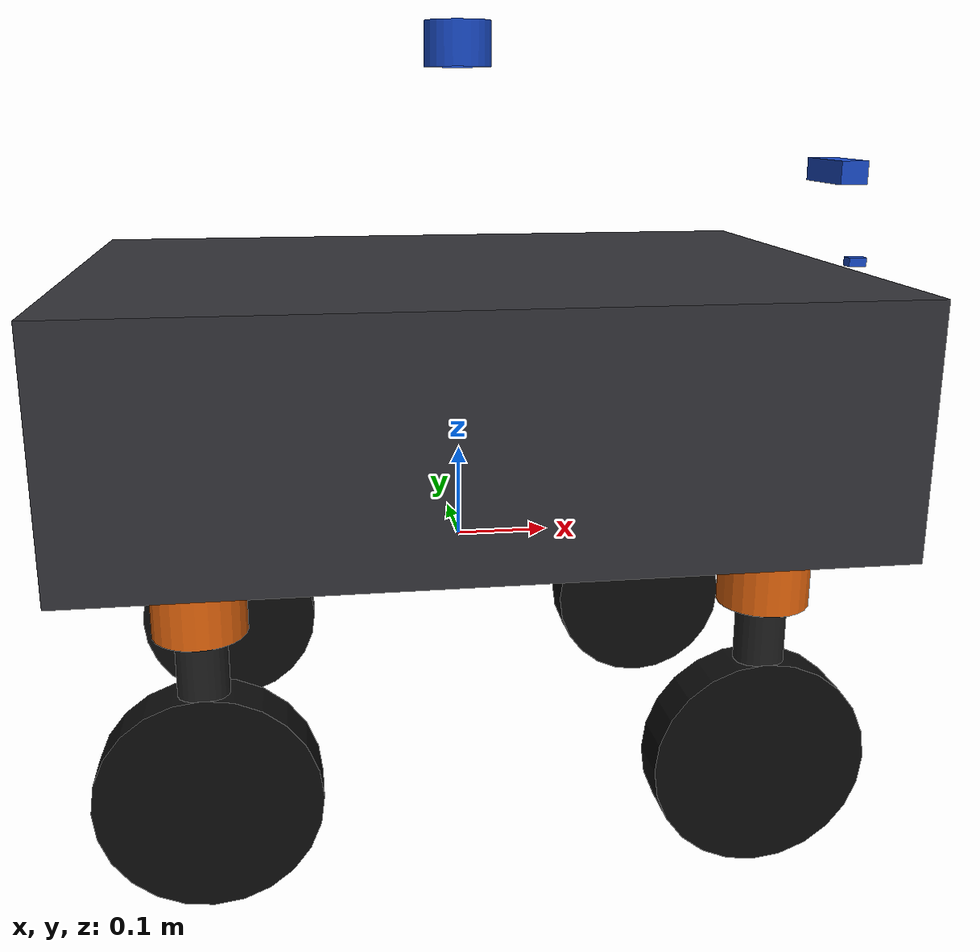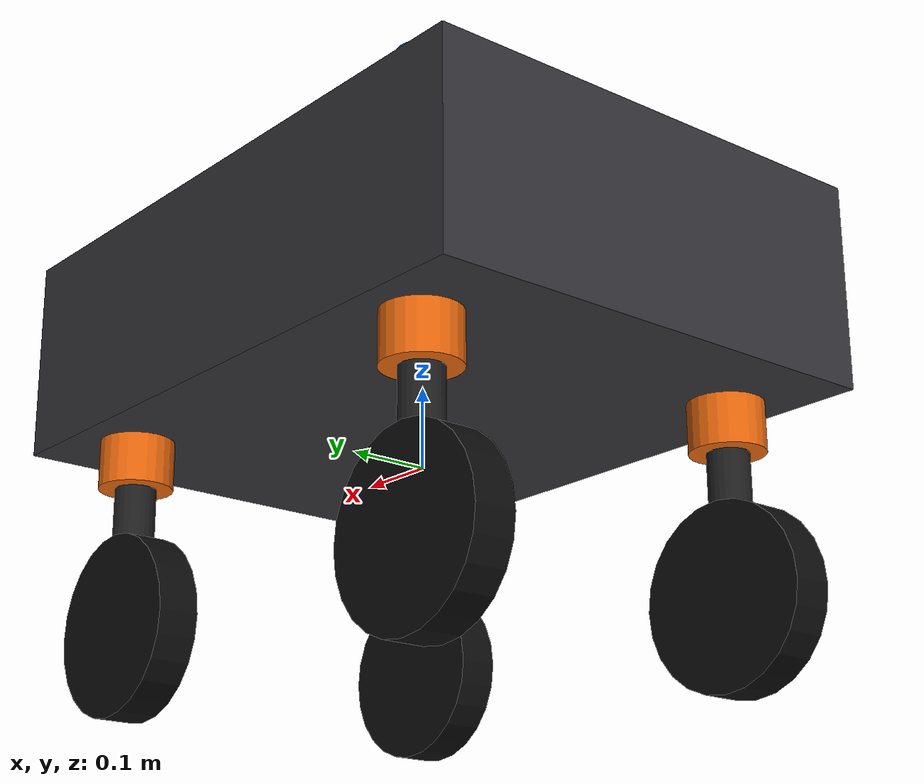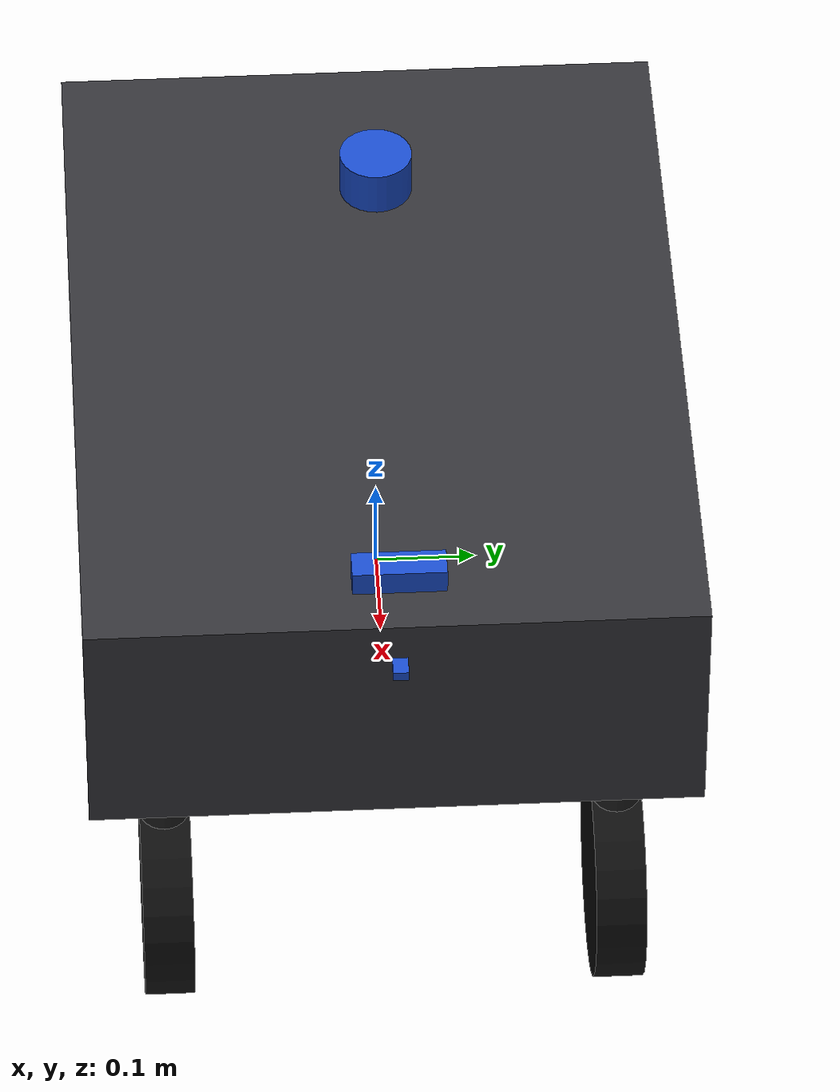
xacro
<?xml version="1.0"?>
<robot name="ares1" xmlns:xacro="http://www.ros.org/wiki/xacro">

  <xacro:include filename="$(find ares1_description)/urdf/ares1_properties.xacro"/>
  <xacro:include filename="$(find ares1_description)/urdf/materials.xacro"/>

  <xacro:arg name="use_sim" default="true"/>

  <!-- ================================================================
       BASE FOOTPRINT / BASE LINK
       ================================================================ -->
  <link name="base_footprint"/>

  <joint name="base_footprint_joint" type="fixed">
    <parent link="base_footprint"/>
    <child link="base_link"/>
    <origin xyz="0 0 ${chassis_ground_clearance}" rpy="0 0 0"/>
  </joint>

  <link name="base_link">
    <visual>
      <origin xyz="0 0 0" rpy="0 0 0"/>
      <geometry>
        <box size="${chassis_length} ${chassis_width} ${chassis_height}"/>
      </geometry>
      <material name="ares_chassis_grey"/>
    </visual>
    <collision>
      <origin xyz="0 0 0" rpy="0 0 0"/>
      <geometry>
        <box size="${chassis_length} ${chassis_width} ${chassis_height}"/>
      </geometry>
    </collision>
    <inertial>
      <origin xyz="0 0 0" rpy="0 0 0"/>
      <mass value="${chassis_mass}"/>
      <inertia
        ixx="${(1/12.0)*chassis_mass*(chassis_width*chassis_width + chassis_height*chassis_height)}"
        ixy="0.0" ixz="0.0"
        iyy="${(1/12.0)*chassis_mass*(chassis_length*chassis_length + chassis_height*chassis_height)}"
        iyz="0.0"
        izz="${(1/12.0)*chassis_mass*(chassis_length*chassis_length + chassis_width*chassis_width)}"/>
    </inertial>
  </link>

  <gazebo reference="base_link">
    <material>Gazebo/DarkGrey</material>
  </gazebo>

  <xacro:macro name="wheel_module" params="prefix x_pos y_pos">

    <!-- STEERING LINK (vertical swivel axis) -->
    <link name="${prefix}_steering_link">
      <visual>
        <origin xyz="0 0 0" rpy="0 0 0"/>
        <geometry>
          <cylinder radius="${steering_link_radius}" length="${steering_link_length}"/>
        </geometry>
        <material name="ares_steering_orange"/>
      </visual>
      <collision>
        <origin xyz="0 0 0" rpy="0 0 0"/>
        <geometry>
          <cylinder radius="${steering_link_radius}" length="${steering_link_length}"/>
        </geometry>
      </collision>
      <inertial>
        <mass value="${steering_mass}"/>
        <inertia
          ixx="${(1/12.0)*steering_mass*(3*steering_link_radius*steering_link_radius + steering_link_length*steering_link_length)}"
          ixy="0.0" ixz="0.0"
          iyy="${(1/12.0)*steering_mass*(3*steering_link_radius*steering_link_radius + steering_link_length*steering_link_length)}"
          iyz="0.0"
          izz="${0.5*steering_mass*steering_link_radius*steering_link_radius}"/>
      </inertial>
    </link>

    <joint name="${prefix}_steering_joint" type="revolute">
      <parent link="base_link"/>
      <child link="${prefix}_steering_link"/>
      <origin xyz="${x_pos} ${y_pos} ${-chassis_height/2.0 - steering_link_length/2.0}" rpy="0 0 0"/>
      <axis xyz="0 0 1"/>
      <limit lower="${-steering_limit_rad}" upper="${steering_limit_rad}"
             effort="${steering_effort}" velocity="${steering_velocity}"/>
      <dynamics damping="0.4" friction="0.15"/>
    </joint>

    <!-- SUSPENSION LINK (prismatic, vertical travel, spring-damped) -->
    <link name="${prefix}_suspension_link">
      <visual>
        <origin xyz="0 0 0" rpy="0 0 0"/>
        <geometry>
          <cylinder radius="${suspension_link_radius}" length="${suspension_link_length}"/>
        </geometry>
        <material name="ares_suspension_dark"/>
      </visual>
      <collision>
        <origin xyz="0 0 0" rpy="0 0 0"/>
        <geometry>
          <cylinder radius="${suspension_link_radius}" length="${suspension_link_length}"/>
        </geometry>
      </collision>
      <inertial>
        <mass value="${suspension_mass}"/>
        <inertia
          ixx="${(1/12.0)*suspension_mass*(3*suspension_link_radius*suspension_link_radius + suspension_link_length*suspension_link_length)}"
          ixy="0.0" ixz="0.0"
          iyy="${(1/12.0)*suspension_mass*(3*suspension_link_radius*suspension_link_radius + suspension_link_length*suspension_link_length)}"
          iyz="0.0"
          izz="${0.5*suspension_mass*suspension_link_radius*suspension_link_radius}"/>
      </inertial>
    </link>

    <joint name="${prefix}_suspension_joint" type="prismatic">
      <parent link="${prefix}_steering_link"/>
      <child link="${prefix}_suspension_link"/>
      <origin xyz="0 0 ${-steering_link_length/2.0 - suspension_link_length/2.0}" rpy="0 0 0"/>
      <!-- Steering axis stays vertical: suspension travels along the SAME Z axis
           as the steering link, purely translating below it, so it never rotates
           the steering axis. -->
      <axis xyz="0 0 1"/>
      <limit lower="${-suspension_travel}" upper="${suspension_travel}"
             effort="${suspension_effort}" velocity="2.0"/>
      <dynamics damping="${suspension_damping/1000.0}" friction="0.05"/>
    </joint>

    <gazebo reference="${prefix}_suspension_joint">
      <axis>
        <dynamics>
          <damping>${suspension_damping}</damping>
          <friction>5.0</friction>
          <spring_stiffness>${suspension_stiffness}</spring_stiffness>
          <spring_reference>0.0</spring_reference>
        </dynamics>
      </axis>
    </gazebo>

    <!-- WHEEL LINK -->
    <link name="${prefix}_wheel_link">
      <visual>
        <origin xyz="0 0 0" rpy="${pi/2.0} 0 0"/>
        <geometry>
          <cylinder radius="${wheel_radius}" length="${wheel_width}"/>
        </geometry>
        <material name="ares_wheel_black"/>
      </visual>
      <collision>
        <origin xyz="0 0 0" rpy="${pi/2.0} 0 0"/>
        <geometry>
          <cylinder radius="${wheel_radius}" length="${wheel_width}"/>
        </geometry>
      </collision>
      <inertial>
        <mass value="${wheel_mass}"/>
        <inertia
          ixx="${(1/12.0)*wheel_mass*(3*wheel_radius*wheel_radius + wheel_width*wheel_width)}"
          ixy="0.0" ixz="0.0"
          iyy="${0.5*wheel_mass*wheel_radius*wheel_radius}"
          iyz="0.0"
          izz="${(1/12.0)*wheel_mass*(3*wheel_radius*wheel_radius + wheel_width*wheel_width)}"/>
      </inertial>
    </link>

    <joint name="${prefix}_wheel_joint" type="continuous">
      <parent link="${prefix}_suspension_link"/>
      <child link="${prefix}_wheel_link"/>
      <origin xyz="0 0 ${-suspension_link_length/2.0 - wheel_radius + suspension_travel}" rpy="0 0 0"/>
      <axis xyz="0 1 0"/>
      <dynamics damping="0.05" friction="0.05"/>
    </joint>

    <gazebo reference="${prefix}_wheel_link">
      <material>Gazebo/Black</material>
      <mu1>0.9</mu1>
      <mu2>0.9</mu2>
    </gazebo>

  </xacro:macro>

  <xacro:wheel_module prefix="front_left"  x_pos="${wheelbase/2.0}"  y_pos="${track_width/2.0}"/>
  <xacro:wheel_module prefix="front_right" x_pos="${wheelbase/2.0}"  y_pos="${-track_width/2.0}"/>
  <xacro:wheel_module prefix="rear_left"   x_pos="${-wheelbase/2.0}" y_pos="${track_width/2.0}"/>
  <xacro:wheel_module prefix="rear_right"  x_pos="${-wheelbase/2.0}" y_pos="${-track_width/2.0}"/>

  <!-- ================================================================
       SENSORS
       ================================================================ -->
  <xacro:include filename="$(find ares1_description)/urdf/sensors.xacro"/>

  <!-- ================================================================
       ROS 2 CONTROL
       ================================================================ -->
  <xacro:include filename="$(find ares1_description)/urdf/ares1.ros2_control.xacro"/>

  <xacro:if value="$(arg use_sim)">
    <gazebo>
      <plugin filename="gz_ros2_control-system" name="gz_ros2_control::GazeboSimROS2ControlPlugin">
        <parameters>$(find ares1_control)/config/ros2_controllers.yaml</parameters>
        <robot_param>robot_description</robot_param>
        <robot_param_node>robot_state_publisher</robot_param_node>
      </plugin>
    </gazebo>
  </xacro:if>

</robot>

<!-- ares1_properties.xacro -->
<robot xmlns:xacro="http://www.ros.org/wiki/xacro">

  <!-- ============================================================
       CHASSIS
       ============================================================ -->
  <xacro:property name="chassis_length" value="0.80"/>
  <xacro:property name="chassis_width"  value="0.60"/>
  <xacro:property name="chassis_height" value="0.25"/>
  <xacro:property name="chassis_mass"   value="35.0"/>
  <xacro:property name="chassis_ground_clearance" value="0.18"/>

  <!-- ============================================================
       WHEEL GEOMETRY / DRIVETRAIN GEOMETRY
       ============================================================ -->
  <xacro:property name="wheelbase"    value="0.55"/>  <!-- front-rear wheel center distance -->
  <xacro:property name="track_width"  value="0.45"/>  <!-- left-right wheel center distance -->
  <xacro:property name="wheel_radius" value="0.11"/>
  <xacro:property name="wheel_width"  value="0.05"/>
  <xacro:property name="wheel_mass"   value="1.8"/>

  <!-- ============================================================
       STEERING (SWIVEL) LINKS
       ============================================================ -->
  <xacro:property name="steering_link_radius" value="0.045"/>
  <xacro:property name="steering_link_length" value="0.06"/>
  <xacro:property name="steering_mass"        value="0.9"/>
  <xacro:property name="steering_limit_rad"   value="3.14159"/>   <!-- +-180 deg, full swivel -->
  <xacro:property name="steering_effort"      value="40.0"/>
  <xacro:property name="steering_velocity"    value="6.0"/>

  <!-- ============================================================
       SUSPENSION
       ============================================================ -->
  <xacro:property name="suspension_link_radius" value="0.025"/>
  <xacro:property name="suspension_link_length" value="0.10"/>
  <xacro:property name="suspension_mass"        value="0.6"/>
  <xacro:property name="suspension_travel"      value="0.04"/>    <!-- +-4 cm -->
  <xacro:property name="suspension_stiffness"   value="15000.0"/>
  <xacro:property name="suspension_damping"     value="900.0"/>
  <xacro:property name="suspension_effort"      value="600.0"/>

  <!-- ============================================================
       WHEEL DRIVE LIMITS
       ============================================================ -->
  <xacro:property name="wheel_effort"   value="25.0"/>
  <xacro:property name="wheel_velocity" value="30.0"/>   <!-- rad/s -->
  <xacro:property name="max_linear_speed"  value="1.5"/> <!-- m/s, IGVC-appropriate -->
  <xacro:property name="max_angular_speed" value="1.5"/> <!-- rad/s -->

  <!-- ============================================================
       SENSOR MOUNT OFFSETS (relative to base_link)
       ============================================================ -->
  <xacro:property name="lidar_x" value="0.0"/>
  <xacro:property name="lidar_y" value="0.0"/>
  <xacro:property name="lidar_z" value="0.35"/>

  <xacro:property name="d456_x" value="0.42"/>
  <xacro:property name="d456_y" value="0.0"/>
  <xacro:property name="d456_z" value="0.22"/>
  <xacro:property name="d456_pitch" value="0.0"/>

  <xacro:property name="imu_x" value="0.0"/>
  <xacro:property name="imu_y" value="0.0"/>
  <xacro:property name="imu_z" value="0.10"/>

  <xacro:property name="tfmini_x" value="0.45"/>
  <xacro:property name="tfmini_y" value="0.0"/>
  <xacro:property name="tfmini_z" value="0.12"/>

  <!-- ============================================================
       LIDAR (RPLIDAR S3) PARAMETERS
       ============================================================ -->
  <xacro:property name="lidar_samples"     value="720"/>
  <xacro:property name="lidar_min_angle"   value="-3.14159"/>
  <xacro:property name="lidar_max_angle"   value="3.14159"/>
  <xacro:property name="lidar_min_range"   value="0.10"/>
  <xacro:property name="lidar_max_range"   value="40.0"/>
  <xacro:property name="lidar_update_rate" value="15"/>
  <xacro:property name="lidar_noise_stddev" value="0.015"/>

  <!-- ============================================================
       D456 CAMERA PARAMETERS
       ============================================================ -->
  <xacro:property name="d456_h_fov"      value="1.15192"/> <!-- ~66 deg -->
  <xacro:property name="d456_img_width"  value="640"/>
  <xacro:property name="d456_img_height" value="480"/>
  <xacro:property name="d456_update_rate" value="30"/>
  <xacro:property name="d456_min_depth"  value="0.20"/>
  <xacro:property name="d456_max_depth"  value="10.0"/>

  <!-- ============================================================
       IMU (BNO085) NOISE PARAMETERS
       ============================================================ -->
  <xacro:property name="imu_update_rate"        value="100"/>
  <xacro:property name="imu_gyro_noise_stddev"  value="0.003"/>
  <xacro:property name="imu_accel_noise_stddev" value="0.03"/>
  <xacro:property name="imu_gyro_bias_stddev"   value="0.0008"/>
  <xacro:property name="imu_accel_bias_stddev"  value="0.008"/>

</robot>

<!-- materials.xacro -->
<robot xmlns:xacro="http://www.ros.org/wiki/xacro">

  <material name="ares_chassis_grey">
    <color rgba="0.20 0.20 0.22 1.0"/>
  </material>

  <material name="ares_wheel_black">
    <color rgba="0.05 0.05 0.05 1.0"/>
  </material>

  <material name="ares_steering_orange">
    <color rgba="0.90 0.40 0.05 1.0"/>
  </material>

  <material name="ares_suspension_dark">
    <color rgba="0.12 0.12 0.12 1.0"/>
  </material>

  <material name="ares_sensor_blue">
    <color rgba="0.10 0.30 0.80 1.0"/>
  </material>

</robot>

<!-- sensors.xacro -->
<robot xmlns:xacro="http://www.ros.org/wiki/xacro">

  <!-- ================================================================
       RPLIDAR S3  (2D LiDAR, gz sim gpu_lidar sensor)
       ================================================================ -->
  <link name="lidar_link">
    <visual>
      <geometry><cylinder radius="0.035" length="0.045"/></geometry>
      <material name="ares_sensor_blue"/>
    </visual>
    <collision>
      <geometry><cylinder radius="0.035" length="0.045"/></geometry>
    </collision>
    <inertial>
      <mass value="0.2"/>
      <inertia ixx="0.0001" ixy="0" ixz="0" iyy="0.0001" iyz="0" izz="0.0001"/>
    </inertial>
  </link>

  <joint name="lidar_joint" type="fixed">
    <parent link="base_link"/>
    <child link="lidar_link"/>
    <origin xyz="${lidar_x} ${lidar_y} ${lidar_z}" rpy="0 0 0"/>
  </joint>

  <gazebo reference="lidar_link">
    <sensor name="rplidar_s3" type="gpu_lidar">
      <frame_id>lidar_link</frame_id>
      <pose>0 0 0 0 0 0</pose>
      <topic>scan</topic>
      <update_rate>${lidar_update_rate}</update_rate>
      <always_on>true</always_on>
      <visualize>false</visualize>
      <ray>
        <scan>
          <horizontal>
            <samples>${lidar_samples}</samples>
            <resolution>1</resolution>
            <min_angle>${lidar_min_angle}</min_angle>
            <max_angle>${lidar_max_angle}</max_angle>
          </horizontal>
        </scan>
        <range>
          <min>${lidar_min_range}</min>
          <max>${lidar_max_range}</max>
          <resolution>0.01</resolution>
        </range>
        <noise>
          <type>gaussian</type>
          <mean>0.0</mean>
          <stddev>${lidar_noise_stddev}</stddev>
        </noise>
      </ray>
    </sensor>
  </gazebo>

  <link name="realsense_D456_link">
    <visual>
      <geometry><box size="0.03 0.09 0.025"/></geometry>
      <material name="ares_sensor_blue"/>
    </visual>
    <collision>
      <geometry><box size="0.03 0.09 0.025"/></geometry>
    </collision>
    <inertial>
      <mass value="0.075"/>
      <inertia ixx="0.00002" ixy="0" ixz="0" iyy="0.00002" iyz="0" izz="0.00002"/>
    </inertial>
  </link>

  <joint name="realsense_D456_joint" type="fixed">
    <parent link="base_link"/>
    <child link="realsense_D456_link"/>
    <origin xyz="${d456_x} ${d456_y} ${d456_z}" rpy="0 ${d456_pitch} 0"/>
  </joint>

  <!-- Optical frame: REP-103 camera convention (z forward, x right, y down) -->
  <link name="realsense_D456_optical_frame"/>
  <joint name="realsense_D456_optical_joint" type="fixed">
    <parent link="realsense_D456_link"/>
    <child link="realsense_D456_optical_frame"/>
    <origin xyz="0 0 0" rpy="${-pi/2.0} 0 ${-pi/2.0}"/>
  </joint>

  <gazebo reference="realsense_D456_link">
    <sensor name="realsense_D456" type="rgbd_camera">
      <pose>0 0 0 0 0 0</pose>
      <topic>realsense_D456</topic>
      <update_rate>${d456_update_rate}</update_rate>
      <always_on>true</always_on>
      <visualize>false</visualize>
      <camera>
        <horizontal_fov>${d456_h_fov}</horizontal_fov>
        <image>
          <width>${d456_img_width}</width>
          <height>${d456_img_height}</height>
          <format>R8G8B8</format>
        </image>
        <clip>
          <near>${d456_min_depth}</near>
          <far>${d456_max_depth}</far>
        </clip>
        <optical_frame_id>realsense_D456_optical_frame</optical_frame_id>
        <noise>
          <type>gaussian</type>
          <mean>0.0</mean>
          <stddev>0.007</stddev>
        </noise>
      </camera>
    </sensor>
  </gazebo>

  <!-- ================================================================
       BNO085 IMU
       ================================================================ -->
  <link name="imu_link">
    <visual>
      <geometry><box size="0.02 0.02 0.008"/></geometry>
      <material name="ares_sensor_blue"/>
    </visual>
    <collision>
      <geometry><box size="0.02 0.02 0.008"/></geometry>
    </collision>
    <inertial>
      <mass value="0.01"/>
      <inertia ixx="1e-6" ixy="0" ixz="0" iyy="1e-6" iyz="0" izz="1e-6"/>
    </inertial>
  </link>

  <joint name="imu_joint" type="fixed">
    <parent link="base_link"/>
    <child link="imu_link"/>
    <origin xyz="${imu_x} ${imu_y} ${imu_z}" rpy="0 0 0"/>
  </joint>

  <gazebo reference="imu_link">
    <sensor name="bno085" type="imu">
      <pose>0 0 0 0 0 0</pose>
      <topic>imu</topic>
      <update_rate>${imu_update_rate}</update_rate>
      <always_on>true</always_on>
      <visualize>false</visualize>
      <imu>
        <angular_velocity>
          <x><noise type="gaussian"><mean>0.0</mean><stddev>${imu_gyro_noise_stddev}</stddev><bias_stddev>${imu_gyro_bias_stddev}</bias_stddev></noise></x>
          <y><noise type="gaussian"><mean>0.0</mean><stddev>${imu_gyro_noise_stddev}</stddev><bias_stddev>${imu_gyro_bias_stddev}</bias_stddev></noise></y>
          <z><noise type="gaussian"><mean>0.0</mean><stddev>${imu_gyro_noise_stddev}</stddev><bias_stddev>${imu_gyro_bias_stddev}</bias_stddev></noise></z>
        </angular_velocity>
        <linear_acceleration>
          <x><noise type="gaussian"><mean>0.0</mean><stddev>${imu_accel_noise_stddev}</stddev><bias_stddev>${imu_accel_bias_stddev}</bias_stddev></noise></x>
          <y><noise type="gaussian"><mean>0.0</mean><stddev>${imu_accel_noise_stddev}</stddev><bias_stddev>${imu_accel_bias_stddev}</bias_stddev></noise></y>
          <z><noise type="gaussian"><mean>0.0</mean><stddev>${imu_accel_noise_stddev}</stddev><bias_stddev>${imu_accel_bias_stddev}</bias_stddev></noise></z>
        </linear_acceleration>
      </imu>
    </sensor>
  </gazebo>

  <link name="tfmini_link">
    <visual>
      <geometry><box size="0.02 0.015 0.01"/></geometry>
      <material name="ares_sensor_blue"/>
    </visual>
    <collision>
      <geometry><box size="0.02 0.015 0.01"/></geometry>
    </collision>
    <inertial>
      <mass value="0.005"/>
      <inertia ixx="1e-7" ixy="0" ixz="0" iyy="1e-7" iyz="0" izz="1e-7"/>
    </inertial>
  </link>

  <joint name="tfmini_joint" type="fixed">
    <parent link="base_link"/>
    <child link="tfmini_link"/>
    <origin xyz="${tfmini_x} ${tfmini_y} ${tfmini_z}" rpy="0 0 0"/>
  </joint>

  <gazebo reference="tfmini_link">
    <sensor name="tfmini" type="gpu_lidar">
      <frame_id>tfmini_link</frame_id>
      <pose>0 0 0 0 0 0</pose>
      <topic>tfmini/scan_raw</topic>
      <update_rate>20</update_rate>
      <always_on>true</always_on>
      <visualize>false</visualize>
      <ray>
        <scan>
          <horizontal>
            <samples>1</samples>
            <resolution>1</resolution>
            <min_angle>0.0</min_angle>
            <max_angle>0.0</max_angle>
          </horizontal>
        </scan>
        <range>
          <min>0.10</min>
          <max>12.0</max>
          <resolution>0.01</resolution>
        </range>
        <noise>
          <type>gaussian</type>
          <mean>0.0</mean>
          <stddev>0.02</stddev>
        </noise>
      </ray>
    </sensor>
  </gazebo>

</robot>
